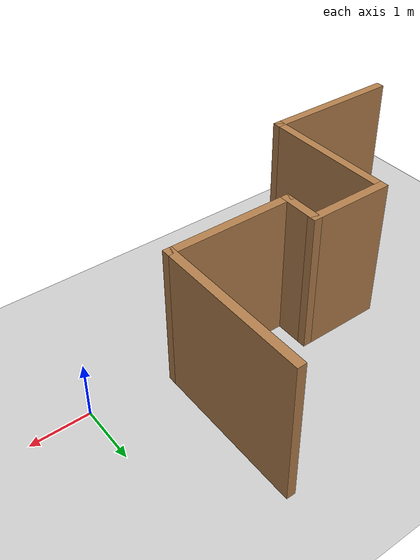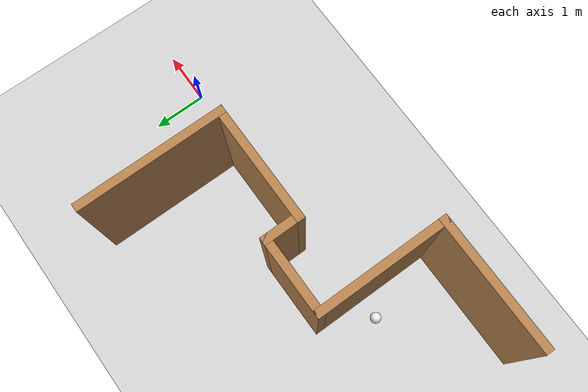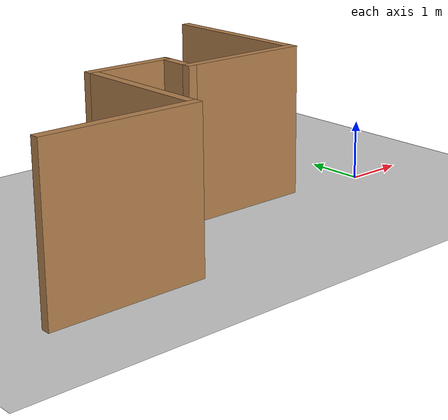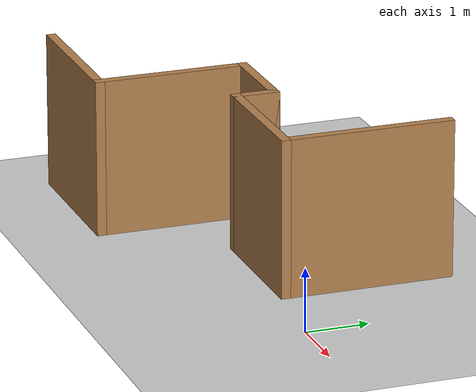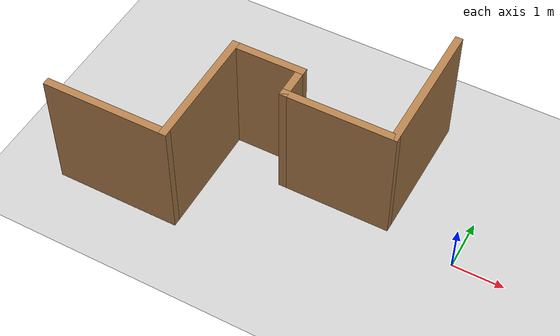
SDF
<sdf version="1.7">
 <world name="default">
  <light name="sun" type="directional">
   <pose>0 0 10 0 -0 0</pose>
   <diffuse>0.8 0.8 0.8 1</diffuse>
   <specular>0.2 0.2 0.2 1</specular>
   <attenuation>
    <range>1000</range>
    <constant>0.9</constant>
    <linear>0.01</linear>
    <quadratic>0.001</quadratic>
   </attenuation>
   <direction>-0.5 0.1 -0.9</direction>
   <spot><inner_angle>0</inner_angle><outer_angle>0</outer_angle><falloff>0</falloff></spot>
  </light>
  <model name="ground_plane">
   <static>1</static>
   <link name="link">
    <collision name="collision">
     <geometry><plane><normal>0 0 1</normal><size>100 100</size></plane></geometry>
     <surface>
      <contact><collide_bitmask>65535</collide_bitmask></contact>
      <friction><ode><mu>100</mu><mu2>50</mu2></ode></friction>
     </surface>
    </collision>
    <visual name="visual">
     <cast_shadows>0</cast_shadows>
     <geometry><plane><normal>0 0 1</normal><size>100 100</size></plane></geometry>
     <material>
      <script><uri>file://media/materials/scripts/gazebo.material</uri><name>Gazebo/Grey</name></script>
     </material>
    </visual>
   </link>
  </model>
  <gravity>0 0 -9.8</gravity>
  <magnetic_field>6e-06 2.3e-05 -4.2e-05</magnetic_field>
  <atmosphere type="adiabatic"/>
  <physics type="ode">
   <max_step_size>0.001</max_step_size>
   <real_time_factor>1</real_time_factor>
   <real_time_update_rate>1000</real_time_update_rate>
  </physics>
  <scene><ambient>0.4 0.4 0.4 1</ambient><background>0.7 0.7 0.7 1</background><shadows>1</shadows></scene>
  <spherical_coordinates>
   <surface_model>EARTH_WGS84</surface_model>
   <latitude_deg>0</latitude_deg>
   <longitude_deg>0</longitude_deg>
   <elevation>0</elevation>
   <heading_deg>0</heading_deg>
  </spherical_coordinates>
  <model name="ball_chaser_white_ball">
   <link name="link">
    <inertial>
     <mass>1</mass>
     <inertia><ixx>0.1</ixx><ixy>0</ixy><ixz>0</ixz><iyy>0.1</iyy><iyz>0</iyz><izz>0.1</izz></inertia>
    </inertial>
    <visual name="visual">
     <geometry><sphere><radius>0.1</radius></sphere></geometry>
     <material>
      <script><name>Gazebo/White</name><uri>file://media/materials/scripts/gazebo.material</uri></script>
      <shader type="pixel"><normal_map>__default__</normal_map></shader>
      <ambient>0 0.3 0.3 1</ambient>
      <diffuse>1 1 1 1</diffuse>
      <specular>1 1 1 1</specular>
      <emissive>1 1 1 1</emissive>
     </material>
    </visual>
    <collision name="collision">
     <geometry><sphere><radius>0.1</radius></sphere></geometry>
     <surface>
      <friction>
       <ode><mu>1</mu><mu2>1</mu2><fdir1>0 0 0</fdir1><slip1>0</slip1><slip2>0</slip2></ode>
       <torsional>
        <coefficient>1</coefficient>
        <patch_radius>0</patch_radius>
        <surface_radius>0</surface_radius>
        <use_patch_radius>1</use_patch_radius>
        <ode><slip>0</slip></ode>
       </torsional>
      </friction>
      <bounce><restitution_coefficient>0</restitution_coefficient><threshold>1e+06</threshold></bounce>
      <contact>
       <collide_without_contact>0</collide_without_contact>
       <collide_without_contact_bitmask>1</collide_without_contact_bitmask>
       <collide_bitmask>1</collide_bitmask>
       <ode>
        <soft_cfm>0</soft_cfm>
        <soft_erp>0.2</soft_erp>
        <kp>1e+13</kp>
        <kd>1</kd>
        <max_vel>0.01</max_vel>
        <min_depth>0</min_depth>
       </ode>
       <bullet>
        <split_impulse>1</split_impulse>
        <split_impulse_penetration_threshold>-0.01</split_impulse_penetration_threshold>
        <soft_cfm>0</soft_cfm>
        <soft_erp>0.2</soft_erp>
        <kp>1e+13</kp>
        <kd>1</kd>
       </bullet>
      </contact>
     </surface>
    </collision>
   </link>
   <static>0</static>
   <pose>-5.3277 -0.112644 0.2898 0 -0 0</pose>
  </model>
  <model name="wall_inside">
   <pose>-3.6425 0.625 0 0 -0 0</pose>
   <link name="Wall_0">
    <collision name="Wall_0_Collision">
     <geometry><box><size>2.75 0.15 2.5</size></box></geometry>
     <pose>0 0 1.25 0 -0 0</pose>
    </collision>
    <visual name="Wall_0_Visual">
     <pose>0 0 1.25 0 -0 0</pose>
     <geometry><box><size>2.75 0.15 2.5</size></box></geometry>
     <material>
      <script><uri>file://media/materials/scripts/gazebo.material</uri><name>Gazebo/Wood</name></script>
      <ambient>1 1 1 1</ambient>
     </material>
     <meta><layer>0</layer></meta>
    </visual>
    <pose>2.2325 0.875 0 0 -0 -1.5708</pose>
   </link>
   <link name="Wall_1">
    <collision name="Wall_1_Collision">
     <geometry><box><size>2.25 0.15 2.5</size></box></geometry>
     <pose>0 0 1.25 0 -0 0</pose>
    </collision>
    <visual name="Wall_1_Visual">
     <pose>0 0 1.25 0 -0 0</pose>
     <geometry><box><size>2.25 0.15 2.5</size></box></geometry>
     <material>
      <script><uri>file://media/materials/scripts/gazebo.material</uri><name>Gazebo/Wood</name></script>
      <ambient>0.435294 0.796078 0.67451 1</ambient>
     </material>
     <meta><layer>0</layer></meta>
    </visual>
    <pose>1.1825 -0.425 0 0 -0 3.14159</pose>
   </link>
   <link name="Wall_2">
    <collision name="Wall_2_Collision">
     <geometry><box><size>0.75 0.15 2.5</size></box></geometry>
     <pose>0 0 1.25 0 -0 0</pose>
    </collision>
    <visual name="Wall_2_Visual">
     <pose>0 0 1.25 0 -0 0</pose>
     <geometry><box><size>0.75 0.15 2.5</size></box></geometry>
     <material>
      <script><uri>file://media/materials/scripts/gazebo.material</uri><name>Gazebo/Wood</name></script>
      <ambient>1 1 1 1</ambient>
     </material>
     <meta><layer>0</layer></meta>
    </visual>
    <pose>0.1325 -0.125 0 0 -0 1.5708</pose>
   </link>
   <link name="Wall_3">
    <collision name="Wall_3_Collision">
     <geometry><box><size>1.5 0.15 2.5</size></box></geometry>
     <pose>0 0 1.25 0 -0 0</pose>
    </collision>
    <visual name="Wall_3_Visual">
     <pose>0 0 1.25 0 -0 0</pose>
     <geometry><box><size>1.5 0.15 2.5</size></box></geometry>
     <material>
      <script><uri>file://media/materials/scripts/gazebo.material</uri><name>Gazebo/Wood</name></script>
      <ambient>1 1 1 1</ambient>
     </material>
     <meta><layer>0</layer></meta>
    </visual>
    <pose>-0.5425 0.175 0 0 -0 3.14159</pose>
   </link>
   <link name="Wall_4">
    <collision name="Wall_4_Collision">
     <geometry><box><size>2.5 0.15 2.5</size></box></geometry>
     <pose>0 0 1.25 0 -0 0</pose>
    </collision>
    <visual name="Wall_4_Visual">
     <pose>0 0 1.25 0 -0 0</pose>
     <geometry><box><size>2.5 0.15 2.5</size></box></geometry>
     <material>
      <script><uri>file://media/materials/scripts/gazebo.material</uri><name>Gazebo/Wood</name></script>
      <ambient>0.921569 0.807843 0.615686 1</ambient>
     </material>
     <meta><layer>0</layer></meta>
    </visual>
    <pose>-1.2175 -1 0 0 -0 -1.5708</pose>
   </link>
   <link name="Wall_5">
    <collision name="Wall_5_Collision">
     <geometry><box><size>2.5 0.15 2.5</size></box></geometry>
     <pose>0 0 1.25 0 -0 0</pose>
    </collision>
    <visual name="Wall_5_Visual">
     <pose>0 0 1.25 0 -0 0</pose>
     <geometry><box><size>2.5 0.15 2.5</size></box></geometry>
     <material>
      <script><uri>file://media/materials/scripts/gazebo.material</uri><name>Gazebo/Wood</name></script>
      <ambient>0.435294 0.796078 0.67451 1</ambient>
     </material>
     <meta><layer>0</layer></meta>
    </visual>
    <pose>-2.3925 -2.175 0 0 -0 3.14159</pose>
   </link>
   <static>1</static>
  </model>
 </world>
</sdf>
